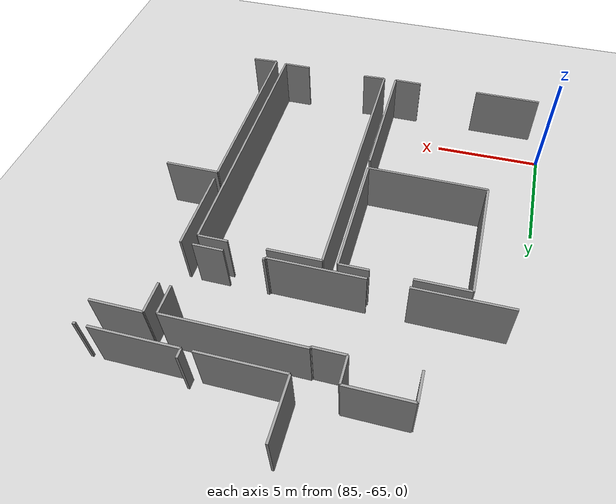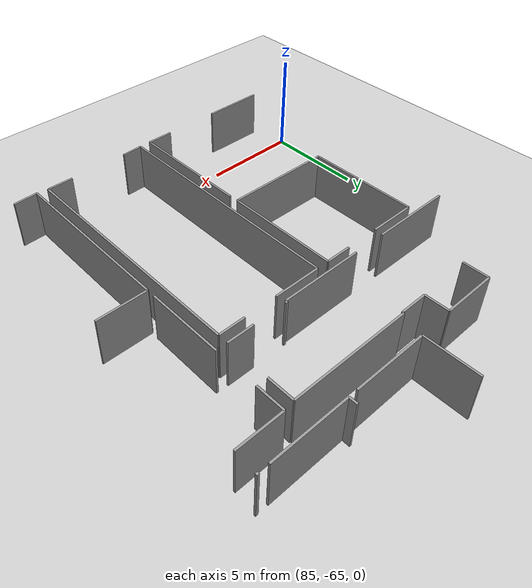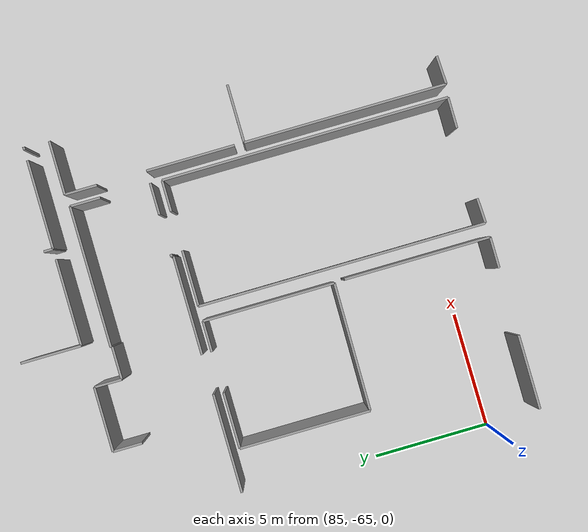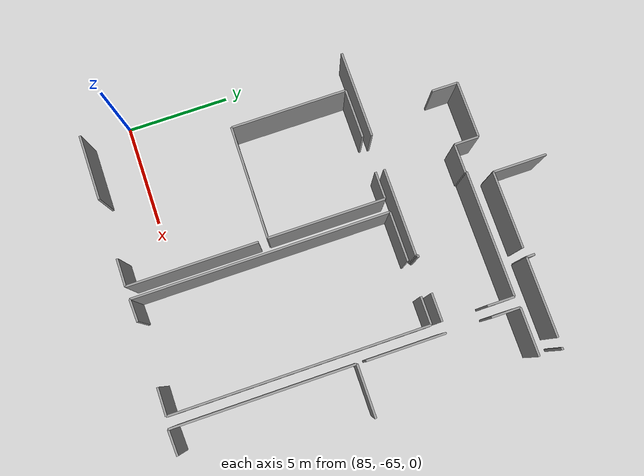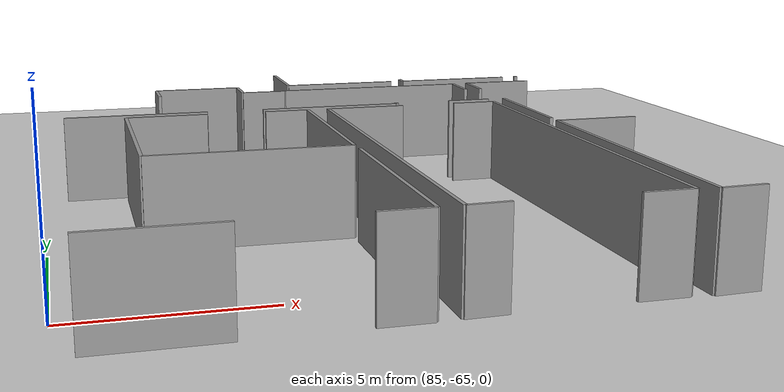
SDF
<sdf version="1.6">
 <world name="default">
  <model name="ground_plane">
   <static>1</static>
   <link name="link">
    <collision name="collision">
     <geometry><plane><normal>0 0 1</normal><size>100 100</size></plane></geometry>
     <surface><friction><ode><mu>100</mu><mu2>50</mu2></ode></friction></surface>
    </collision>
    <visual name="visual">
     <cast_shadows>0</cast_shadows>
     <geometry><plane><normal>0 0 1</normal><size>100 100</size></plane></geometry>
     <material>
      <script><uri>file://media/materials/scripts/gazebo.material</uri><name>Gazebo/Grey</name></script>
     </material>
    </visual>
   </link>
  </model>
  <model name="50036894">
   <static>1</static>
   <link name="Wall_484">
    <collision name="Wall_484_Collision">
     <geometry><box><size>1.25836085945 0.1 2.5</size></box></geometry>
     <pose>0.629180429724 0 1.25 0 0 0</pose>
    </collision>
    <visual name="Wall_484_Visual">
     <pose>0.629180429724 0 1.25 0 0 0</pose>
     <geometry><box><size>1.25836085945 0.1 2.5</size></box></geometry>
     <material>
      <script><uri>file://media/materials/scripts/gazebo.material</uri><name>Gazebo/Grey</name></script>
      <ambient>1 1 1 1</ambient>
     </material>
    </visual>
    <pose>211.517983377 -118.126406685 0 0 0 1.57079632679</pose>
   </link>
   <link name="Wall_485">
    <collision name="Wall_485_Collision">
     <geometry><box><size>2.75409087739 0.1 2.5</size></box></geometry>
     <pose>1.3770454387 0 1.25 0 0 0</pose>
    </collision>
    <visual name="Wall_485_Visual">
     <pose>1.3770454387 0 1.25 0 0 0</pose>
     <geometry><box><size>2.75409087739 0.1 2.5</size></box></geometry>
     <material>
      <script><uri>file://media/materials/scripts/gazebo.material</uri><name>Gazebo/Grey</name></script>
      <ambient>1 1 1 1</ambient>
     </material>
    </visual>
    <pose>211.517983377 -116.868045825 0 0 0 0.0</pose>
   </link>
   <link name="Wall_486">
    <collision name="Wall_486_Collision">
     <geometry><box><size>1.17264421888 0.1 2.5</size></box></geometry>
     <pose>0.586322109441 0 1.25 0 0 0</pose>
    </collision>
    <visual name="Wall_486_Visual">
     <pose>0.586322109441 0 1.25 0 0 0</pose>
     <geometry><box><size>1.17264421888 0.1 2.5</size></box></geometry>
     <material>
      <script><uri>file://media/materials/scripts/gazebo.material</uri><name>Gazebo/Grey</name></script>
      <ambient>1 1 1 1</ambient>
     </material>
    </visual>
    <pose>214.272074254 -116.868045825 0 0 0 -1.57079632679</pose>
   </link>
   <link name="Wall_487">
    <collision name="Wall_487_Collision">
     <geometry><box><size>1.39986939624 0.1 2.5</size></box></geometry>
     <pose>0.699934698121 0 1.25 0 0 0</pose>
    </collision>
    <visual name="Wall_487_Visual">
     <pose>0.699934698121 0 1.25 0 0 0</pose>
     <geometry><box><size>1.39986939624 0.1 2.5</size></box></geometry>
     <material>
      <script><uri>file://media/materials/scripts/gazebo.material</uri><name>Gazebo/Grey</name></script>
      <ambient>1 1 1 1</ambient>
     </material>
    </visual>
    <pose>214.272074254 -118.040690044 0 0 0 0.0</pose>
   </link>
   <link name="Wall_488">
    <collision name="Wall_488_Collision">
     <geometry><box><size>0.0608638867932 0.1 2.5</size></box></geometry>
     <pose>0.0304319433966 0 1.25 0 0 0</pose>
    </collision>
    <visual name="Wall_488_Visual">
     <pose>0.0304319433966 0 1.25 0 0 0</pose>
     <geometry><box><size>0.0608638867932 0.1 2.5</size></box></geometry>
     <material>
      <script><uri>file://media/materials/scripts/gazebo.material</uri><name>Gazebo/Grey</name></script>
      <ambient>1 1 1 1</ambient>
     </material>
    </visual>
    <pose>215.67194365 -118.040690044 0 0 0 1.57079632679</pose>
   </link>
   <link name="Wall_489">
    <collision name="Wall_489_Collision">
     <geometry><box><size>6.03820476894 0.1 2.5</size></box></geometry>
     <pose>3.01910238447 0 1.25 0 0 0</pose>
    </collision>
    <visual name="Wall_489_Visual">
     <pose>3.01910238447 0 1.25 0 0 0</pose>
     <geometry><box><size>6.03820476894 0.1 2.5</size></box></geometry>
     <material>
      <script><uri>file://media/materials/scripts/gazebo.material</uri><name>Gazebo/Grey</name></script>
      <ambient>1 1 1 1</ambient>
     </material>
    </visual>
    <pose>215.67194365 -117.979826158 0 0 0 0.0</pose>
   </link>
   <link name="Wall_490">
    <collision name="Wall_490_Collision">
     <geometry><box><size>1.29792238586 0.1 2.5</size></box></geometry>
     <pose>0.648961192932 0 1.25 0 0 0</pose>
    </collision>
    <visual name="Wall_490_Visual">
     <pose>0.648961192932 0 1.25 0 0 0</pose>
     <geometry><box><size>1.29792238586 0.1 2.5</size></box></geometry>
     <material>
      <script><uri>file://media/materials/scripts/gazebo.material</uri><name>Gazebo/Grey</name></script>
      <ambient>1 1 1 1</ambient>
     </material>
    </visual>
    <pose>221.710148419 -117.979826158 0 0 0 -1.57079632679</pose>
   </link>
   <link name="Wall_491">
    <collision name="Wall_491_Collision">
     <geometry><box><size>1.34914949058 0.1 2.5</size></box></geometry>
     <pose>0.674574745291 0 1.25 0 0 0</pose>
    </collision>
    <visual name="Wall_491_Visual">
     <pose>0.674574745291 0 1.25 0 0 0</pose>
     <geometry><box><size>1.34914949058 0.1 2.5</size></box></geometry>
     <material>
      <script><uri>file://media/materials/scripts/gazebo.material</uri><name>Gazebo/Grey</name></script>
      <ambient>1 1 1 1</ambient>
     </material>
    </visual>
    <pose>221.710148419 -121.419903759 0 0 0 3.14159265359</pose>
   </link>
   <link name="Wall_492">
    <collision name="Wall_492_Collision">
     <geometry><box><size>0.111583792454 0.1 2.5</size></box></geometry>
     <pose>0.055791896227 0 1.25 0 0 0</pose>
    </collision>
    <visual name="Wall_492_Visual">
     <pose>0.055791896227 0 1.25 0 0 0</pose>
     <geometry><box><size>0.111583792454 0.1 2.5</size></box></geometry>
     <material>
      <script><uri>file://media/materials/scripts/gazebo.material</uri><name>Gazebo/Grey</name></script>
      <ambient>1 1 1 1</ambient>
     </material>
    </visual>
    <pose>218.664418084 -121.419903759 0 0 0 3.14159265359</pose>
   </link>
   <link name="Wall_493">
    <collision name="Wall_493_Collision">
     <geometry><box><size>0.0793766523594 0.1 2.5</size></box></geometry>
     <pose>0.0396883261797 0 1.25 0 0 0</pose>
    </collision>
    <visual name="Wall_493_Visual">
     <pose>0.0396883261797 0 1.25 0 0 0</pose>
     <geometry><box><size>0.0793766523594 0.1 2.5</size></box></geometry>
     <material>
      <script><uri>file://media/materials/scripts/gazebo.material</uri><name>Gazebo/Grey</name></script>
      <ambient>1 1 1 1</ambient>
     </material>
    </visual>
    <pose>218.552834292 -121.419903759 0 0 0 -1.57079632679</pose>
   </link>
   <link name="Wall_494">
    <collision name="Wall_494_Collision">
     <geometry><box><size>4.22243214628 0.1 2.5</size></box></geometry>
     <pose>2.11121607314 0 1.25 0 0 0</pose>
    </collision>
    <visual name="Wall_494_Visual">
     <pose>2.11121607314 0 1.25 0 0 0</pose>
     <geometry><box><size>4.22243214628 0.1 2.5</size></box></geometry>
     <material>
      <script><uri>file://media/materials/scripts/gazebo.material</uri><name>Gazebo/Grey</name></script>
      <ambient>1 1 1 1</ambient>
     </material>
    </visual>
    <pose>218.552834292 -121.499280411 0 0 0 3.14159265359</pose>
   </link>
   <link name="Wall_495">
    <collision name="Wall_495_Collision">
     <geometry><box><size>4.21736015571 0.1 2.5</size></box></geometry>
     <pose>2.10868007786 0 1.25 0 0 0</pose>
    </collision>
    <visual name="Wall_495_Visual">
     <pose>2.10868007786 0 1.25 0 0 0</pose>
     <geometry><box><size>4.21736015571 0.1 2.5</size></box></geometry>
     <material>
      <script><uri>file://media/materials/scripts/gazebo.material</uri><name>Gazebo/Grey</name></script>
      <ambient>1 1 1 1</ambient>
     </material>
    </visual>
    <pose>212.631285306 -121.499280411 0 0 0 3.14159265359</pose>
   </link>
   <link name="Wall_512">
    <collision name="Wall_512_Collision">
     <geometry><box><size>6.24488838451 0.1 2.5</size></box></geometry>
     <pose>3.12244419225 0 1.25 0 0 0</pose>
    </collision>
    <visual name="Wall_512_Visual">
     <pose>3.12244419225 0 1.25 0 0 0</pose>
     <geometry><box><size>6.24488838451 0.1 2.5</size></box></geometry>
     <material>
      <script><uri>file://media/materials/scripts/gazebo.material</uri><name>Gazebo/Grey</name></script>
      <ambient>1 1 1 1</ambient>
     </material>
    </visual>
    <pose>215.677015641 -128.002840315 0 0 0 -1.57079632679</pose>
   </link>
   <link name="Wall_513">
    <collision name="Wall_513_Collision">
     <geometry><box><size>1.32378953775 0.1 2.5</size></box></geometry>
     <pose>0.661894768876 0 1.25 0 0 0</pose>
    </collision>
    <visual name="Wall_513_Visual">
     <pose>0.661894768876 0 1.25 0 0 0</pose>
     <geometry><box><size>1.32378953775 0.1 2.5</size></box></geometry>
     <material>
      <script><uri>file://media/materials/scripts/gazebo.material</uri><name>Gazebo/Grey</name></script>
      <ambient>1 1 1 1</ambient>
     </material>
    </visual>
    <pose>215.677015641 -134.247728699 0 0 0 3.14159265359</pose>
   </link>
   <link name="Wall_514">
    <collision name="Wall_514_Collision">
     <geometry><box><size>3.16238611796 0.1 2.5</size></box></geometry>
     <pose>1.58119305898 0 1.25 0 0 0</pose>
    </collision>
    <visual name="Wall_514_Visual">
     <pose>1.58119305898 0 1.25 0 0 0</pose>
     <geometry><box><size>3.16238611796 0.1 2.5</size></box></geometry>
     <material>
      <script><uri>file://media/materials/scripts/gazebo.material</uri><name>Gazebo/Grey</name></script>
      <ambient>1 1 1 1</ambient>
     </material>
    </visual>
    <pose>211.467263471 -134.247728699 0 0 0 3.14159265359</pose>
   </link>
   <link name="Wall_518">
    <collision name="Wall_518_Collision">
     <geometry><box><size>5.59009440242 0.1 2.5</size></box></geometry>
     <pose>2.79504720121 0 1.25 0 0 0</pose>
    </collision>
    <visual name="Wall_518_Visual">
     <pose>2.79504720121 0 1.25 0 0 0</pose>
     <geometry><box><size>5.59009440242 0.1 2.5</size></box></geometry>
     <material>
      <script><uri>file://media/materials/scripts/gazebo.material</uri><name>Gazebo/Grey</name></script>
      <ambient>1 1 1 1</ambient>
     </material>
    </visual>
    <pose>210.184049858 -127.511110829 0 0 0 1.57079632679</pose>
   </link>
   <link name="Wall_519">
    <collision name="Wall_519_Collision">
     <geometry><box><size>2.38129957078 0.1 2.5</size></box></geometry>
     <pose>1.19064978539 0 1.25 0 0 0</pose>
    </collision>
    <visual name="Wall_519_Visual">
     <pose>1.19064978539 0 1.25 0 0 0</pose>
     <geometry><box><size>2.38129957078 0.1 2.5</size></box></geometry>
     <material>
      <script><uri>file://media/materials/scripts/gazebo.material</uri><name>Gazebo/Grey</name></script>
      <ambient>1 1 1 1</ambient>
     </material>
    </visual>
    <pose>210.184049858 -121.921016427 0 0 0 0.0</pose>
   </link>
   <link name="Wall_520">
    <collision name="Wall_520_Collision">
     <geometry><box><size>1.31364555662 0.1 2.5</size></box></geometry>
     <pose>0.65682277831 0 1.25 0 0 0</pose>
    </collision>
    <visual name="Wall_520_Visual">
     <pose>0.65682277831 0 1.25 0 0 0</pose>
     <geometry><box><size>1.31364555662 0.1 2.5</size></box></geometry>
     <material>
      <script><uri>file://media/materials/scripts/gazebo.material</uri><name>Gazebo/Grey</name></script>
      <ambient>1 1 1 1</ambient>
     </material>
    </visual>
    <pose>214.330402145 -121.921016427 0 0 0 0.0</pose>
   </link>
   <link name="Wall_521">
    <collision name="Wall_521_Collision">
     <geometry><box><size>5.63447431988 0.1 2.5</size></box></geometry>
     <pose>2.81723715994 0 1.25 0 0 0</pose>
    </collision>
    <visual name="Wall_521_Visual">
     <pose>2.81723715994 0 1.25 0 0 0</pose>
     <geometry><box><size>5.63447431988 0.1 2.5</size></box></geometry>
     <material>
      <script><uri>file://media/materials/scripts/gazebo.material</uri><name>Gazebo/Grey</name></script>
      <ambient>1 1 1 1</ambient>
     </material>
    </visual>
    <pose>215.644047702 -121.921016427 0 0 0 -1.57079632679</pose>
   </link>
   <link name="Wall_522">
    <collision name="Wall_522_Collision">
     <geometry><box><size>5.4601782057 0.1 2.5</size></box></geometry>
     <pose>2.73008910285 0 1.25 0 0 0</pose>
    </collision>
    <visual name="Wall_522_Visual">
     <pose>2.73008910285 0 1.25 0 0 0</pose>
     <geometry><box><size>5.4601782057 0.1 2.5</size></box></geometry>
     <material>
      <script><uri>file://media/materials/scripts/gazebo.material</uri><name>Gazebo/Grey</name></script>
      <ambient>1 1 1 1</ambient>
     </material>
    </visual>
    <pose>215.644047702 -127.555490747 0 0 0 3.13346463937</pose>
   </link>
   <link name="Wall_539">
    <collision name="Wall_539_Collision">
     <geometry><box><size>12.3051563124 0.1 2.5</size></box></geometry>
     <pose>6.1525781562 0 1.25 0 0 0</pose>
    </collision>
    <visual name="Wall_539_Visual">
     <pose>6.1525781562 0 1.25 0 0 0</pose>
     <geometry><box><size>12.3051563124 0.1 2.5</size></box></geometry>
     <material>
      <script><uri>file://media/materials/scripts/gazebo.material</uri><name>Gazebo/Grey</name></script>
      <ambient>1 1 1 1</ambient>
     </material>
    </visual>
    <pose>216.285654509 -134.225158341 0 0 0 1.57079632679</pose>
   </link>
   <link name="Wall_540">
    <collision name="Wall_540_Collision">
     <geometry><box><size>2.38637156135 0.1 2.5</size></box></geometry>
     <pose>1.19318578067 0 1.25 0 0 0</pose>
    </collision>
    <visual name="Wall_540_Visual">
     <pose>1.19318578067 0 1.25 0 0 0</pose>
     <geometry><box><size>2.38637156135 0.1 2.5</size></box></geometry>
     <material>
      <script><uri>file://media/materials/scripts/gazebo.material</uri><name>Gazebo/Grey</name></script>
      <ambient>1 1 1 1</ambient>
     </material>
    </visual>
    <pose>216.285654509 -121.920002029 0 0 0 0.0</pose>
   </link>
   <link name="Wall_541">
    <collision name="Wall_541_Collision">
     <geometry><box><size>1.33646951417 0.1 2.5</size></box></geometry>
     <pose>0.668234757083 0 1.25 0 0 0</pose>
    </collision>
    <visual name="Wall_541_Visual">
     <pose>0.668234757083 0 1.25 0 0 0</pose>
     <geometry><box><size>1.33646951417 0.1 2.5</size></box></geometry>
     <material>
      <script><uri>file://media/materials/scripts/gazebo.material</uri><name>Gazebo/Grey</name></script>
      <ambient>1 1 1 1</ambient>
     </material>
    </visual>
    <pose>220.353390943 -121.920002029 0 0 0 0.0</pose>
   </link>
   <link name="Wall_542">
    <collision name="Wall_542_Collision">
     <geometry><box><size>12.261283594 0.1 2.5</size></box></geometry>
     <pose>6.13064179701 0 1.25 0 0 0</pose>
    </collision>
    <visual name="Wall_542_Visual">
     <pose>6.13064179701 0 1.25 0 0 0</pose>
     <geometry><box><size>12.261283594 0.1 2.5</size></box></geometry>
     <material>
      <script><uri>file://media/materials/scripts/gazebo.material</uri><name>Gazebo/Grey</name></script>
      <ambient>1 1 1 1</ambient>
     </material>
    </visual>
    <pose>221.689860457 -121.920002029 0 0 0 -1.57079632679</pose>
   </link>
   <link name="Wall_543">
    <collision name="Wall_543_Collision">
     <geometry><box><size>1.3161815519 0.1 2.5</size></box></geometry>
     <pose>0.658090775951 0 1.25 0 0 0</pose>
    </collision>
    <visual name="Wall_543_Visual">
     <pose>0.658090775951 0 1.25 0 0 0</pose>
     <geometry><box><size>1.3161815519 0.1 2.5</size></box></geometry>
     <material>
      <script><uri>file://media/materials/scripts/gazebo.material</uri><name>Gazebo/Grey</name></script>
      <ambient>1 1 1 1</ambient>
     </material>
    </visual>
    <pose>221.689860457 -134.181285623 0 0 0 3.14159265359</pose>
   </link>
   <link name="Wall_544">
    <collision name="Wall_544_Collision">
     <geometry><box><size>1.07615667265 0.1 2.5</size></box></geometry>
     <pose>0.538078336325 0 1.25 0 0 0</pose>
    </collision>
    <visual name="Wall_544_Visual">
     <pose>0.538078336325 0 1.25 0 0 0</pose>
     <geometry><box><size>1.07615667265 0.1 2.5</size></box></geometry>
     <material>
      <script><uri>file://media/materials/scripts/gazebo.material</uri><name>Gazebo/Grey</name></script>
      <ambient>1 1 1 1</ambient>
     </material>
    </visual>
    <pose>217.360916509 -134.181285623 0 0 0 -3.10081338645</pose>
   </link>
   <link name="Wall_545">
    <collision name="Wall_545_Collision">
     <geometry><box><size>3.77533617787 0.1 2.5</size></box></geometry>
     <pose>1.88766808894 0 1.25 0 0 0</pose>
    </collision>
    <visual name="Wall_545_Visual">
     <pose>1.88766808894 0 1.25 0 0 0</pose>
     <geometry><box><size>3.77533617787 0.1 2.5</size></box></geometry>
     <material>
      <script><uri>file://media/materials/scripts/gazebo.material</uri><name>Gazebo/Grey</name></script>
      <ambient>1 1 1 1</ambient>
     </material>
    </visual>
    <pose>222.240171433 -125.183827958 0 0 0 1.57079632679</pose>
   </link>
   <link name="Wall_546">
    <collision name="Wall_546_Collision">
     <geometry><box><size>1.38084943162 0.1 2.5</size></box></geometry>
     <pose>0.69042471581 0 1.25 0 0 0</pose>
    </collision>
    <visual name="Wall_546_Visual">
     <pose>0.69042471581 0 1.25 0 0 0</pose>
     <geometry><box><size>1.38084943162 0.1 2.5</size></box></geometry>
     <material>
      <script><uri>file://media/materials/scripts/gazebo.material</uri><name>Gazebo/Grey</name></script>
      <ambient>1 1 1 1</ambient>
     </material>
    </visual>
    <pose>222.240171433 -119.287385325 0 0 0 1.57079632679</pose>
   </link>
   <link name="Wall_547">
    <collision name="Wall_547_Collision">
     <geometry><box><size>2.28746774531 0.1 2.5</size></box></geometry>
     <pose>1.14373387265 0 1.25 0 0 0</pose>
    </collision>
    <visual name="Wall_547_Visual">
     <pose>1.14373387265 0 1.25 0 0 0</pose>
     <geometry><box><size>2.28746774531 0.1 2.5</size></box></geometry>
     <material>
      <script><uri>file://media/materials/scripts/gazebo.material</uri><name>Gazebo/Grey</name></script>
      <ambient>1 1 1 1</ambient>
     </material>
    </visual>
    <pose>222.240171433 -117.906535894 0 0 0 0.0</pose>
   </link>
   <link name="Wall_570">
    <collision name="Wall_570_Collision">
     <geometry><box><size>8.66828547699 0.1 2.5</size></box></geometry>
     <pose>4.33414273849 0 1.25 0 0 0</pose>
    </collision>
    <visual name="Wall_570_Visual">
     <pose>4.33414273849 0 1.25 0 0 0</pose>
     <geometry><box><size>8.66828547699 0.1 2.5</size></box></geometry>
     <material>
      <script><uri>file://media/materials/scripts/gazebo.material</uri><name>Gazebo/Grey</name></script>
      <ambient>1 1 1 1</ambient>
     </material>
    </visual>
    <pose>222.240171433 -134.264466268 0 0 0 1.57079632679</pose>
   </link>
   <link name="Wall_571">
    <collision name="Wall_571_Collision">
     <geometry><box><size>2.47766739154 0.1 2.5</size></box></geometry>
     <pose>1.23883369577 0 1.25 0 0 0</pose>
    </collision>
    <visual name="Wall_571_Visual">
     <pose>1.23883369577 0 1.25 0 0 0</pose>
     <geometry><box><size>2.47766739154 0.1 2.5</size></box></geometry>
     <material>
      <script><uri>file://media/materials/scripts/gazebo.material</uri><name>Gazebo/Grey</name></script>
      <ambient>1 1 1 1</ambient>
     </material>
    </visual>
    <pose>222.240171433 -125.596180791 0 0 0 0.0</pose>
   </link>
   <link name="Wall_575">
    <collision name="Wall_575_Collision">
     <geometry><box><size>1.2109556721 0.1 2.5</size></box></geometry>
     <pose>0.605477836049 0 1.25 0 0 0</pose>
    </collision>
    <visual name="Wall_575_Visual">
     <pose>0.605477836049 0 1.25 0 0 0</pose>
     <geometry><box><size>1.2109556721 0.1 2.5</size></box></geometry>
     <material>
      <script><uri>file://media/materials/scripts/gazebo.material</uri><name>Gazebo/Grey</name></script>
      <ambient>1 1 1 1</ambient>
     </material>
    </visual>
    <pose>223.449841183 -134.208674372 0 0 0 -3.09550372193</pose>
   </link>
   <link name="Wall_590">
    <collision name="Wall_590_Collision">
     <geometry><box><size>0.121727773586 0.1 2.5</size></box></geometry>
     <pose>0.0608638867932 0 1.25 0 0 0</pose>
    </collision>
    <visual name="Wall_590_Visual">
     <pose>0.0608638867932 0 1.25 0 0 0</pose>
     <geometry><box><size>0.121727773586 0.1 2.5</size></box></geometry>
     <material>
      <script><uri>file://media/materials/scripts/gazebo.material</uri><name>Gazebo/Grey</name></script>
      <ambient>1 1 1 1</ambient>
     </material>
    </visual>
    <pose>224.591039061 -116.822905109 0 0 0 3.14159265359</pose>
   </link>
   <link name="Wall_603">
    <collision name="Wall_603_Collision">
     <geometry><box><size>3.79384894344 0.1 2.5</size></box></geometry>
     <pose>1.89692447172 0 1.25 0 0 0</pose>
    </collision>
    <visual name="Wall_603_Visual">
     <pose>1.89692447172 0 1.25 0 0 0</pose>
     <geometry><box><size>3.79384894344 0.1 2.5</size></box></geometry>
     <material>
      <script><uri>file://media/materials/scripts/gazebo.material</uri><name>Gazebo/Grey</name></script>
      <ambient>1 1 1 1</ambient>
     </material>
    </visual>
    <pose>224.015368131 -116.821890711 0 0 0 3.14159265359</pose>
   </link>
   <link name="Wall_604">
    <collision name="Wall_604_Collision">
     <geometry><box><size>0.401955252363 0.1 2.5</size></box></geometry>
     <pose>0.200977626182 0 1.25 0 0 0</pose>
    </collision>
    <visual name="Wall_604_Visual">
     <pose>0.200977626182 0 1.25 0 0 0</pose>
     <geometry><box><size>0.401955252363 0.1 2.5</size></box></geometry>
     <material>
      <script><uri>file://media/materials/scripts/gazebo.material</uri><name>Gazebo/Grey</name></script>
      <ambient>1 1 1 1</ambient>
     </material>
    </visual>
    <pose>220.221519188 -116.821890711 0 0 0 1.57079632679</pose>
   </link>
   <link name="Wall_629">
    <collision name="Wall_629_Collision">
     <geometry><box><size>2.59533757267 0.1 2.5</size></box></geometry>
     <pose>1.29766878634 0 1.25 0 0 0</pose>
    </collision>
    <visual name="Wall_629_Visual">
     <pose>1.29766878634 0 1.25 0 0 0</pose>
     <geometry><box><size>2.59533757267 0.1 2.5</size></box></geometry>
     <material>
      <script><uri>file://media/materials/scripts/gazebo.material</uri><name>Gazebo/Grey</name></script>
      <ambient>1 1 1 1</ambient>
     </material>
    </visual>
    <pose>216.067558914 -116.823412308 0 0 0 1.57079632679</pose>
   </link>
   <link name="Wall_633">
    <collision name="Wall_633_Collision">
     <geometry><box><size>3.71269712903 0.1 2.5</size></box></geometry>
     <pose>1.85634856451 0 1.25 0 0 0</pose>
    </collision>
    <visual name="Wall_633_Visual">
     <pose>1.85634856451 0 1.25 0 0 0</pose>
     <geometry><box><size>3.71269712903 0.1 2.5</size></box></geometry>
     <material>
      <script><uri>file://media/materials/scripts/gazebo.material</uri><name>Gazebo/Grey</name></script>
      <ambient>1 1 1 1</ambient>
     </material>
    </visual>
    <pose>219.780256009 -116.822905109 0 0 0 -3.14145604157</pose>
   </link>
   <pose>-122.8 67.3347215794 0 0 0 0</pose>
  </model>
 </world>
</sdf>
